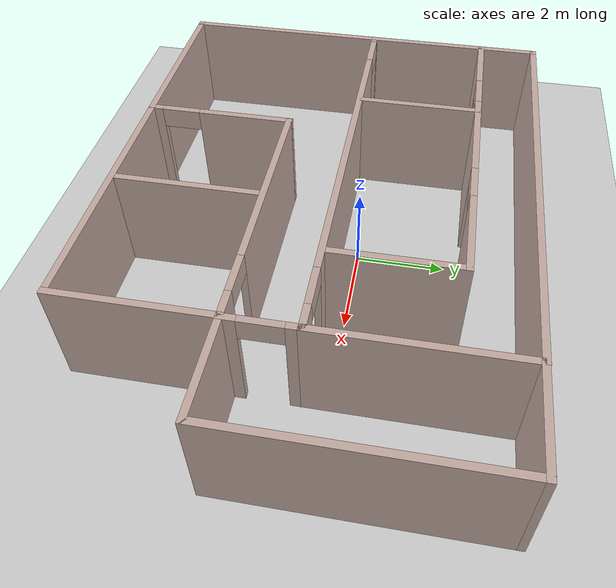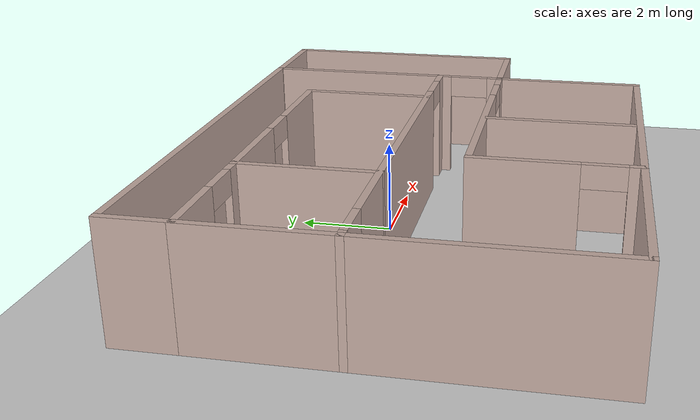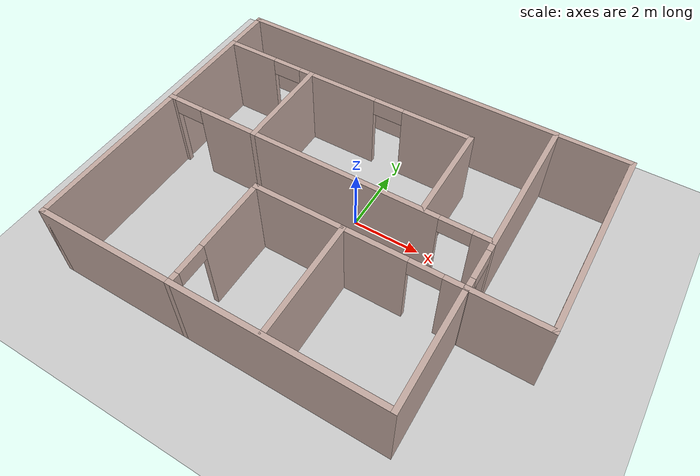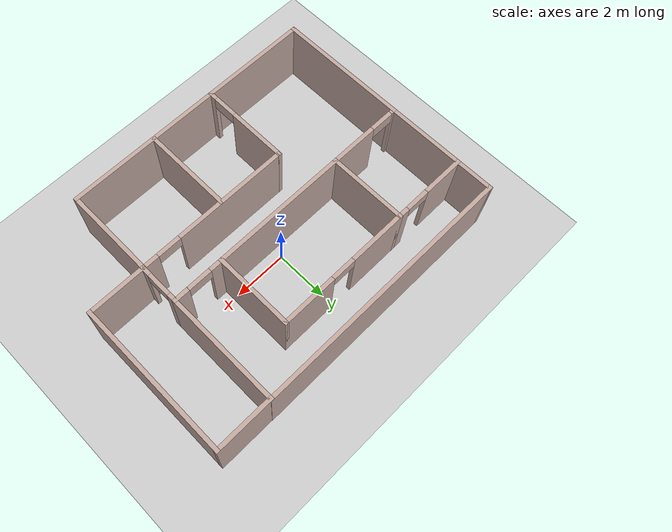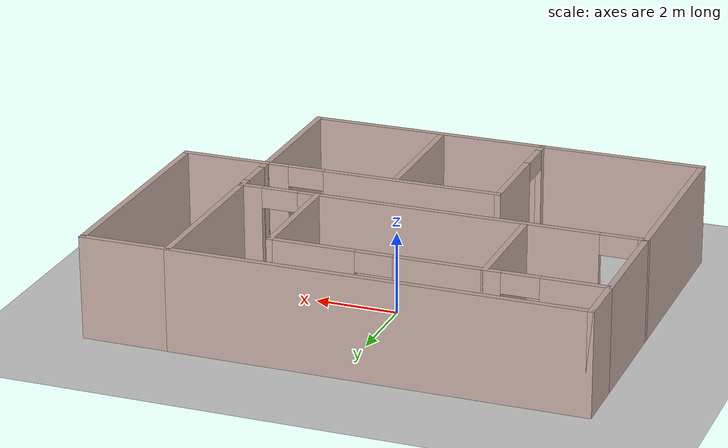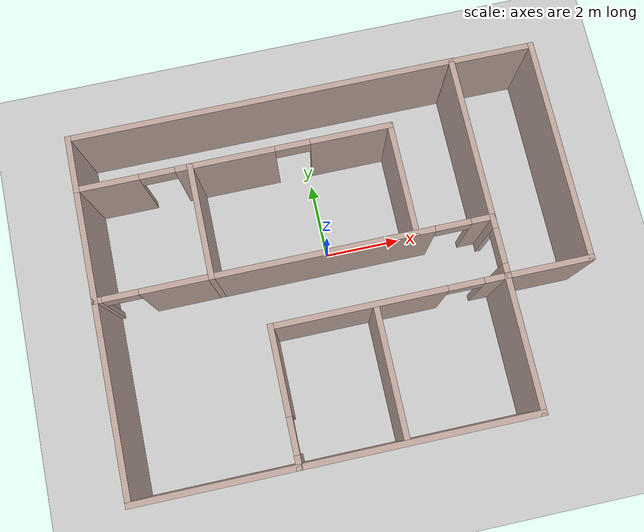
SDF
<sdf version="1.6">
 <world name="default">
  <plugin name="hello" filename="libhello_test.so"/>
  <light name="sun" type="directional">
   <pose>0 0 10 0 -0 0</pose>
   <diffuse>0.8 0.8 0.8 1</diffuse>
   <specular>0.2 0.2 0.2 1</specular>
   <attenuation>
    <range>1000</range>
    <constant>0.9</constant>
    <linear>0.01</linear>
    <quadratic>0.001</quadratic>
   </attenuation>
   <direction>-0.5 0.1 -0.9</direction>
  </light>
  <model name="ground_plane">
   <static>1</static>
   <link name="link">
    <collision name="collision">
     <geometry><plane><normal>0 0 1</normal><size>100 100</size></plane></geometry>
     <surface><friction><ode><mu>100</mu><mu2>50</mu2></ode></friction></surface>
    </collision>
    <visual name="visual">
     <cast_shadows>0</cast_shadows>
     <geometry><plane><normal>0 0 1</normal><size>100 100</size></plane></geometry>
     <material>
      <script><uri>file://media/materials/scripts/gazebo.material</uri><name>Gazebo/Grey</name></script>
     </material>
    </visual>
   </link>
  </model>
  <gravity>0 0 -9.8</gravity>
  <magnetic_field>6e-06 2.3e-05 -4.2e-05</magnetic_field>
  <atmosphere type="adiabatic"/>
  <physics name="default_physics" default="0" type="ode">
   <max_step_size>0.001</max_step_size>
   <real_time_factor>1</real_time_factor>
   <real_time_update_rate>1000</real_time_update_rate>
  </physics>
  <scene><ambient>0.4 0.4 0.4 1</ambient><background>0.7 0.7 0.7 1</background><shadows>1</shadows></scene>
  <spherical_coordinates>
   <surface_model>EARTH_WGS84</surface_model>
   <latitude_deg>0</latitude_deg>
   <longitude_deg>0</longitude_deg>
   <elevation>0</elevation>
   <heading_deg>0</heading_deg>
  </spherical_coordinates>
  <model name="Building1">
   <pose>0.801354 -0.777046 0 0 -0 0</pose>
   <link name="Wall_0">
    <pose>-1.67871 0.325 0 0 -0 3.14159</pose>
    <visual name="Wall_0_Visual_0">
     <pose>-4.70018 0 1.25 0 -0 0</pose>
     <geometry><box><size>0.607207 0.15 2.5</size></box></geometry>
     <material>
      <script><uri>file://media/materials/scripts/gazebo.material</uri><name>Gazebo/Grey</name></script>
      <ambient>0.760784 0.662745 0.627451 1</ambient>
     </material>
     <meta><layer>0</layer></meta>
    </visual>
    <collision name="Wall_0_Collision_0">
     <geometry><box><size>0.607207 0.15 2.5</size></box></geometry>
     <pose>-4.70018 0 1.25 0 -0 0</pose>
    </collision>
    <visual name="Wall_0_Visual_1">
     <pose>0.181804 0 1.25 0 -0 0</pose>
     <geometry><box><size>7.35676 0.15 2.5</size></box></geometry>
     <material>
      <script><uri>file://media/materials/scripts/gazebo.material</uri><name>Gazebo/Grey</name></script>
      <ambient>0.760784 0.662745 0.627451 1</ambient>
     </material>
     <meta><layer>0</layer></meta>
    </visual>
    <collision name="Wall_0_Collision_1">
     <geometry><box><size>7.35676 0.15 2.5</size></box></geometry>
     <pose>0.181804 0 1.25 0 -0 0</pose>
    </collision>
    <visual name="Wall_0_Visual_2">
     <pose>4.88198 0 1.25 0 -0 0</pose>
     <geometry><box><size>0.243598 0.15 2.5</size></box></geometry>
     <material>
      <script><uri>file://media/materials/scripts/gazebo.material</uri><name>Gazebo/Grey</name></script>
      <ambient>0.760784 0.662745 0.627451 1</ambient>
     </material>
     <meta><layer>0</layer></meta>
    </visual>
    <collision name="Wall_0_Collision_2">
     <geometry><box><size>0.243598 0.15 2.5</size></box></geometry>
     <pose>4.88198 0 1.25 0 -0 0</pose>
    </collision>
    <visual name="Wall_0_Visual_3">
     <pose>-3.94657 0 2.25 0 -0 0</pose>
     <geometry><box><size>0.9 0.15 0.5</size></box></geometry>
     <material>
      <script><uri>file://media/materials/scripts/gazebo.material</uri><name>Gazebo/Grey</name></script>
      <ambient>0.760784 0.662745 0.627451 1</ambient>
     </material>
     <meta><layer>0</layer></meta>
    </visual>
    <collision name="Wall_0_Collision_3">
     <geometry><box><size>0.9 0.15 0.5</size></box></geometry>
     <pose>-3.94657 0 2.25 0 -0 0</pose>
    </collision>
    <visual name="Wall_0_Visual_4">
     <pose>4.31018 0 2.25 0 -0 0</pose>
     <geometry><box><size>0.9 0.15 0.5</size></box></geometry>
     <material>
      <script><uri>file://media/materials/scripts/gazebo.material</uri><name>Gazebo/Grey</name></script>
      <ambient>0.760784 0.662745 0.627451 1</ambient>
     </material>
     <meta><layer>0</layer></meta>
    </visual>
    <collision name="Wall_0_Collision_4">
     <geometry><box><size>0.9 0.15 0.5</size></box></geometry>
     <pose>4.31018 0 2.25 0 -0 0</pose>
    </collision>
   </link>
   <link name="Wall_11">
    <collision name="Wall_11_Collision">
     <geometry><box><size>3 0.15 2.5</size></box></geometry>
     <pose>0 0 1.25 0 -0 0</pose>
    </collision>
    <visual name="Wall_11_Visual">
     <pose>0 0 1.25 0 -0 0</pose>
     <geometry><box><size>3 0.15 2.5</size></box></geometry>
     <material>
      <script><uri>file://media/materials/scripts/gazebo.material</uri><name>Gazebo/Grey</name></script>
      <ambient>0.760784 0.662745 0.627451 1</ambient>
     </material>
     <meta><layer>0</layer></meta>
    </visual>
    <pose>-6.60749 1.75 0 0 -0 1.5708</pose>
   </link>
   <link name="Wall_13">
    <pose>-5.18249 3.175 0 0 -0 0</pose>
    <visual name="Wall_13_Visual_0">
     <pose>-0.678273 0 1.25 0 -0 0</pose>
     <geometry><box><size>1.64345 0.15 2.5</size></box></geometry>
     <material>
      <script><uri>file://media/materials/scripts/gazebo.material</uri><name>Gazebo/Grey</name></script>
      <ambient>0.760784 0.662745 0.627451 1</ambient>
     </material>
     <meta><layer>0</layer></meta>
    </visual>
    <collision name="Wall_13_Collision_0">
     <geometry><box><size>1.64345 0.15 2.5</size></box></geometry>
     <pose>-0.678273 0 1.25 0 -0 0</pose>
    </collision>
    <visual name="Wall_13_Visual_1">
     <pose>1.27173 0 1.25 0 -0 0</pose>
     <geometry><box><size>0.456546 0.15 2.5</size></box></geometry>
     <material>
      <script><uri>file://media/materials/scripts/gazebo.material</uri><name>Gazebo/Grey</name></script>
      <ambient>0.760784 0.662745 0.627451 1</ambient>
     </material>
     <meta><layer>0</layer></meta>
    </visual>
    <collision name="Wall_13_Collision_1">
     <geometry><box><size>0.456546 0.15 2.5</size></box></geometry>
     <pose>1.27173 0 1.25 0 -0 0</pose>
    </collision>
    <visual name="Wall_13_Visual_2">
     <pose>0.593454 0 2.25 0 -0 0</pose>
     <geometry><box><size>0.9 0.15 0.5</size></box></geometry>
     <material>
      <script><uri>file://media/materials/scripts/gazebo.material</uri><name>Gazebo/Grey</name></script>
      <ambient>0.760784 0.662745 0.627451 1</ambient>
     </material>
     <meta><layer>0</layer></meta>
    </visual>
    <collision name="Wall_13_Collision_2">
     <geometry><box><size>0.9 0.15 0.5</size></box></geometry>
     <pose>0.593454 0 2.25 0 -0 0</pose>
    </collision>
   </link>
   <link name="Wall_14">
    <collision name="Wall_14_Collision">
     <geometry><box><size>3 0.15 2.5</size></box></geometry>
     <pose>0 0 1.25 0 -0 0</pose>
    </collision>
    <visual name="Wall_14_Visual">
     <pose>0 0 1.25 0 -0 0</pose>
     <geometry><box><size>3 0.15 2.5</size></box></geometry>
     <material>
      <script><uri>file://media/materials/scripts/gazebo.material</uri><name>Gazebo/Grey</name></script>
      <ambient>0.760784 0.662745 0.627451 1</ambient>
     </material>
     <meta><layer>0</layer></meta>
    </visual>
    <pose>-3.75749 1.75 0 0 -0 -1.5708</pose>
   </link>
   <link name="Wall_17">
    <collision name="Wall_17_Collision">
     <geometry><box><size>4.25 0.15 2.5</size></box></geometry>
     <pose>0 0 1.25 0 -0 0</pose>
    </collision>
    <visual name="Wall_17_Visual">
     <pose>0 0 1.25 0 -0 0</pose>
     <geometry><box><size>4.25 0.15 2.5</size></box></geometry>
     <material>
      <script><uri>file://media/materials/scripts/gazebo.material</uri><name>Gazebo/Grey</name></script>
      <ambient>0.760784 0.662745 0.627451 1</ambient>
     </material>
     <meta><layer>0</layer></meta>
    </visual>
    <pose>3.25763 2.375 0 0 -0 1.5708</pose>
   </link>
   <link name="Wall_2">
    <pose>3.25763 -0.426044 0 0 -0 -1.5708</pose>
    <visual name="Wall_2_Visual_0">
     <pose>-0.641987 0 1.25 0 -0 0</pose>
     <geometry><box><size>0.36819 0.15 2.5</size></box></geometry>
     <material>
      <script><uri>file://media/materials/scripts/gazebo.material</uri><name>Gazebo/Grey</name></script>
      <ambient>0.760784 0.662745 0.627451 1</ambient>
     </material>
     <meta><layer>0</layer></meta>
    </visual>
    <collision name="Wall_2_Collision_0">
     <geometry><box><size>0.36819 0.15 2.5</size></box></geometry>
     <pose>-0.641987 0 1.25 0 -0 0</pose>
    </collision>
    <visual name="Wall_2_Visual_1">
     <pose>0.634095 0 1.25 0 -0 0</pose>
     <geometry><box><size>0.383974 0.15 2.5</size></box></geometry>
     <material>
      <script><uri>file://media/materials/scripts/gazebo.material</uri><name>Gazebo/Grey</name></script>
      <ambient>0.760784 0.662745 0.627451 1</ambient>
     </material>
     <meta><layer>0</layer></meta>
    </visual>
    <collision name="Wall_2_Collision_1">
     <geometry><box><size>0.383974 0.15 2.5</size></box></geometry>
     <pose>0.634095 0 1.25 0 -0 0</pose>
    </collision>
    <visual name="Wall_2_Visual_2">
     <pose>-0.007892 0 2.25 0 -0 0</pose>
     <geometry><box><size>0.9 0.15 0.5</size></box></geometry>
     <material>
      <script><uri>file://media/materials/scripts/gazebo.material</uri><name>Gazebo/Grey</name></script>
      <ambient>0.760784 0.662745 0.627451 1</ambient>
     </material>
     <meta><layer>0</layer></meta>
    </visual>
    <collision name="Wall_2_Collision_2">
     <geometry><box><size>0.9 0.15 0.5</size></box></geometry>
     <pose>-0.007892 0 2.25 0 -0 0</pose>
    </collision>
   </link>
   <link name="Wall_21">
    <collision name="Wall_21_Collision">
     <geometry><box><size>6 0.15 2.5</size></box></geometry>
     <pose>0 0 1.25 0 -0 0</pose>
    </collision>
    <visual name="Wall_21_Visual">
     <pose>0 0 1.25 0 -0 0</pose>
     <geometry><box><size>6 0.15 2.5</size></box></geometry>
     <material>
      <script><uri>file://media/materials/scripts/gazebo.material</uri><name>Gazebo/Grey</name></script>
      <ambient>0.760784 0.662745 0.627451 1</ambient>
     </material>
     <meta><layer>0</layer></meta>
    </visual>
    <pose>0.319599 -4.525 0 0 -0 0</pose>
   </link>
   <link name="Wall_22">
    <collision name="Wall_22_Collision">
     <geometry><box><size>3.5 0.15 2.5</size></box></geometry>
     <pose>0 0 1.25 0 -0 0</pose>
    </collision>
    <visual name="Wall_22_Visual">
     <pose>0 0 1.25 0 -0 0</pose>
     <geometry><box><size>3.5 0.15 2.5</size></box></geometry>
     <material>
      <script><uri>file://media/materials/scripts/gazebo.material</uri><name>Gazebo/Grey</name></script>
      <ambient>0.760784 0.662745 0.627451 1</ambient>
     </material>
     <meta><layer>0</layer></meta>
    </visual>
    <pose>3.2446 -2.85 0 0 -0 1.5708</pose>
   </link>
   <link name="Wall_27">
    <collision name="Wall_27_Collision">
     <geometry><box><size>3.45 0.15 2.5</size></box></geometry>
     <pose>0 0 1.25 0 -0 0</pose>
    </collision>
    <visual name="Wall_27_Visual">
     <pose>0 0 1.25 0 -0 0</pose>
     <geometry><box><size>3.45 0.15 2.5</size></box></geometry>
     <material>
      <script><uri>file://media/materials/scripts/gazebo.material</uri><name>Gazebo/Grey</name></script>
      <ambient>0.760784 0.662745 0.627451 1</ambient>
     </material>
     <meta><layer>0</layer></meta>
    </visual>
    <pose>-0.028511 -2.83674 0 0 -0 -1.5708</pose>
   </link>
   <link name="Wall_33">
    <collision name="Wall_33_Collision">
     <geometry><box><size>1.5 0.15 2.5</size></box></geometry>
     <pose>0 0 1.25 0 -0 0</pose>
    </collision>
    <visual name="Wall_33_Visual">
     <pose>0 0 1.25 0 -0 0</pose>
     <geometry><box><size>1.5 0.15 2.5</size></box></geometry>
     <material>
      <script><uri>file://media/materials/scripts/gazebo.material</uri><name>Gazebo/Grey</name></script>
      <ambient>0.760784 0.662745 0.627451 1</ambient>
     </material>
     <meta><layer>0</layer></meta>
    </visual>
    <pose>-6.60749 3.85 0 0 -0 1.5708</pose>
   </link>
   <link name="Wall_34">
    <collision name="Wall_34_Collision">
     <geometry><box><size>10 0.15 2.5</size></box></geometry>
     <pose>0 0 1.25 0 -0 0</pose>
    </collision>
    <visual name="Wall_34_Visual">
     <pose>0 0 1.25 0 -0 0</pose>
     <geometry><box><size>10 0.15 2.5</size></box></geometry>
     <material>
      <script><uri>file://media/materials/scripts/gazebo.material</uri><name>Gazebo/Grey</name></script>
      <ambient>0.760784 0.662745 0.627451 1</ambient>
     </material>
     <meta><layer>0</layer></meta>
    </visual>
    <pose>-1.68249 4.525 0 0 -0 0</pose>
   </link>
   <link name="Wall_36">
    <pose>-1.20749 3.175 0 0 -0 0</pose>
    <visual name="Wall_36_Visual_0">
     <pose>-1.51256 0 1.25 0 -0 0</pose>
     <geometry><box><size>2.22488 0.15 2.5</size></box></geometry>
     <material>
      <script><uri>file://media/materials/scripts/gazebo.material</uri><name>Gazebo/Grey</name></script>
      <ambient>0.760784 0.662745 0.627451 1</ambient>
     </material>
     <meta><layer>0</layer></meta>
    </visual>
    <collision name="Wall_36_Collision_0">
     <geometry><box><size>2.22488 0.15 2.5</size></box></geometry>
     <pose>-1.51256 0 1.25 0 -0 0</pose>
    </collision>
    <visual name="Wall_36_Visual_1">
     <pose>1.56244 0 1.25 0 -0 0</pose>
     <geometry><box><size>2.12512 0.15 2.5</size></box></geometry>
     <material>
      <script><uri>file://media/materials/scripts/gazebo.material</uri><name>Gazebo/Grey</name></script>
      <ambient>0.760784 0.662745 0.627451 1</ambient>
     </material>
     <meta><layer>0</layer></meta>
    </visual>
    <collision name="Wall_36_Collision_1">
     <geometry><box><size>2.12512 0.15 2.5</size></box></geometry>
     <pose>1.56244 0 1.25 0 -0 0</pose>
    </collision>
    <visual name="Wall_36_Visual_2">
     <pose>0.049881 0 2.25 0 -0 0</pose>
     <geometry><box><size>0.9 0.15 0.5</size></box></geometry>
     <material>
      <script><uri>file://media/materials/scripts/gazebo.material</uri><name>Gazebo/Grey</name></script>
      <ambient>0.760784 0.662745 0.627451 1</ambient>
     </material>
     <meta><layer>0</layer></meta>
    </visual>
    <collision name="Wall_36_Collision_2">
     <geometry><box><size>0.9 0.15 0.5</size></box></geometry>
     <pose>0.049881 0 2.25 0 -0 0</pose>
    </collision>
   </link>
   <link name="Wall_37">
    <collision name="Wall_37_Collision">
     <geometry><box><size>3 0.15 2.5</size></box></geometry>
     <pose>0 0 1.25 0 -0 0</pose>
    </collision>
    <visual name="Wall_37_Visual">
     <pose>0 0 1.25 0 -0 0</pose>
     <geometry><box><size>3 0.15 2.5</size></box></geometry>
     <material>
      <script><uri>file://media/materials/scripts/gazebo.material</uri><name>Gazebo/Grey</name></script>
      <ambient>0.760784 0.662745 0.627451 1</ambient>
     </material>
     <meta><layer>0</layer></meta>
    </visual>
    <pose>1.34251 1.75 0 0 -0 -1.5708</pose>
   </link>
   <link name="Wall_39">
    <collision name="Wall_39_Collision">
     <geometry><box><size>2.25 0.15 2.5</size></box></geometry>
     <pose>0 0 1.25 0 -0 0</pose>
    </collision>
    <visual name="Wall_39_Visual">
     <pose>0 0 1.25 0 -0 0</pose>
     <geometry><box><size>2.25 0.15 2.5</size></box></geometry>
     <material>
      <script><uri>file://media/materials/scripts/gazebo.material</uri><name>Gazebo/Grey</name></script>
      <ambient>0.760784 0.662745 0.627451 1</ambient>
     </material>
     <meta><layer>0</layer></meta>
    </visual>
    <pose>4.30028 -1.17727 0 0 -0 -0.000175</pose>
   </link>
   <link name="Wall_40">
    <collision name="Wall_40_Collision">
     <geometry><box><size>5.84195 0.15 2.5</size></box></geometry>
     <pose>0 0 1.25 0 -0 0</pose>
    </collision>
    <visual name="Wall_40_Visual">
     <pose>0 0 1.25 0 -0 0</pose>
     <geometry><box><size>5.84195 0.15 2.5</size></box></geometry>
     <material>
      <script><uri>file://media/materials/scripts/gazebo.material</uri><name>Gazebo/Grey</name></script>
      <ambient>0.760784 0.662745 0.627451 1</ambient>
     </material>
     <meta><layer>0</layer></meta>
    </visual>
    <pose>5.35049 1.66855 0 0 -0 1.5708</pose>
   </link>
   <link name="Wall_41">
    <collision name="Wall_41_Collision">
     <geometry><box><size>2.24393 0.15 2.5</size></box></geometry>
     <pose>0 0 1.25 0 -0 0</pose>
    </collision>
    <visual name="Wall_41_Visual">
     <pose>0 0 1.25 0 -0 0</pose>
     <geometry><box><size>2.24393 0.15 2.5</size></box></geometry>
     <material>
      <script><uri>file://media/materials/scripts/gazebo.material</uri><name>Gazebo/Grey</name></script>
      <ambient>0.760784 0.662745 0.627451 1</ambient>
     </material>
     <meta><layer>0</layer></meta>
    </visual>
    <pose>4.30352 4.51457 0 0 -0 3.14156</pose>
   </link>
   <link name="Wall_5">
    <collision name="Wall_5_Collision">
     <geometry><box><size>5 0.15 2.5</size></box></geometry>
     <pose>0 0 1.25 0 -0 0</pose>
    </collision>
    <visual name="Wall_5_Visual">
     <pose>0 0 1.25 0 -0 0</pose>
     <geometry><box><size>5 0.15 2.5</size></box></geometry>
     <material>
      <script><uri>file://media/materials/scripts/gazebo.material</uri><name>Gazebo/Grey</name></script>
      <ambient>0.760784 0.662745 0.627451 1</ambient>
     </material>
     <meta><layer>0</layer></meta>
    </visual>
    <pose>-6.60749 -2.1 0 0 -0 -1.5708</pose>
   </link>
   <link name="Wall_6">
    <collision name="Wall_6_Collision">
     <geometry><box><size>4.13688 0.15 2.5</size></box></geometry>
     <pose>0 0 1.25 0 -0 0</pose>
    </collision>
    <visual name="Wall_6_Visual">
     <pose>0 0 1.25 0 -0 0</pose>
     <geometry><box><size>4.13688 0.15 2.5</size></box></geometry>
     <material>
      <script><uri>file://media/materials/scripts/gazebo.material</uri><name>Gazebo/Grey</name></script>
      <ambient>0.760784 0.662745 0.627451 1</ambient>
     </material>
     <meta><layer>0</layer></meta>
    </visual>
    <pose>-4.61405 -4.525 0 0 -0 0</pose>
   </link>
   <link name="Wall_7">
    <pose>-2.6054 -2.85 0 0 -0 1.5708</pose>
    <visual name="Wall_7_Visual_0">
     <pose>-1.57223 0 1.25 0 -0 0</pose>
     <geometry><box><size>0.355544 0.15 2.5</size></box></geometry>
     <material>
      <script><uri>file://media/materials/scripts/gazebo.material</uri><name>Gazebo/Grey</name></script>
      <ambient>0.760784 0.662745 0.627451 1</ambient>
     </material>
     <meta><layer>0</layer></meta>
    </visual>
    <collision name="Wall_7_Collision_0">
     <geometry><box><size>0.355544 0.15 2.5</size></box></geometry>
     <pose>-1.57223 0 1.25 0 -0 0</pose>
    </collision>
    <visual name="Wall_7_Visual_1">
     <pose>0.627772 0 1.25 0 -0 0</pose>
     <geometry><box><size>2.24446 0.15 2.5</size></box></geometry>
     <material>
      <script><uri>file://media/materials/scripts/gazebo.material</uri><name>Gazebo/Grey</name></script>
      <ambient>0.760784 0.662745 0.627451 1</ambient>
     </material>
     <meta><layer>0</layer></meta>
    </visual>
    <collision name="Wall_7_Collision_1">
     <geometry><box><size>2.24446 0.15 2.5</size></box></geometry>
     <pose>0.627772 0 1.25 0 -0 0</pose>
    </collision>
    <visual name="Wall_7_Visual_2">
     <pose>-0.944456 0 2.25 0 -0 0</pose>
     <geometry><box><size>0.9 0.15 0.5</size></box></geometry>
     <material>
      <script><uri>file://media/materials/scripts/gazebo.material</uri><name>Gazebo/Grey</name></script>
      <ambient>0.760784 0.662745 0.627451 1</ambient>
     </material>
     <meta><layer>0</layer></meta>
    </visual>
    <collision name="Wall_7_Collision_2">
     <geometry><box><size>0.9 0.15 0.5</size></box></geometry>
     <pose>-0.944456 0 2.25 0 -0 0</pose>
    </collision>
   </link>
   <link name="Wall_9">
    <pose>0.328897 -1.17709 0 0 -0 3.14159</pose>
    <visual name="Wall_9_Visual_0">
     <pose>-2.66597 0 1.25 0 -0 0</pose>
     <geometry><box><size>0.660407 0.15 2.5</size></box></geometry>
     <material>
      <script><uri>file://media/materials/scripts/gazebo.material</uri><name>Gazebo/Grey</name></script>
      <ambient>0.760784 0.662745 0.627451 1</ambient>
     </material>
     <meta><layer>0</layer></meta>
    </visual>
    <collision name="Wall_9_Collision_0">
     <geometry><box><size>0.660407 0.15 2.5</size></box></geometry>
     <pose>-2.66597 0 1.25 0 -0 0</pose>
    </collision>
    <visual name="Wall_9_Visual_1">
     <pose>0.780204 0 1.25 0 -0 0</pose>
     <geometry><box><size>4.43194 0.15 2.5</size></box></geometry>
     <material>
      <script><uri>file://media/materials/scripts/gazebo.material</uri><name>Gazebo/Grey</name></script>
      <ambient>0.760784 0.662745 0.627451 1</ambient>
     </material>
     <meta><layer>0</layer></meta>
    </visual>
    <collision name="Wall_9_Collision_1">
     <geometry><box><size>4.43194 0.15 2.5</size></box></geometry>
     <pose>0.780204 0 1.25 0 -0 0</pose>
    </collision>
    <visual name="Wall_9_Visual_2">
     <pose>-1.88577 0 2.25 0 -0 0</pose>
     <geometry><box><size>0.9 0.15 0.5</size></box></geometry>
     <material>
      <script><uri>file://media/materials/scripts/gazebo.material</uri><name>Gazebo/Grey</name></script>
      <ambient>0.760784 0.662745 0.627451 1</ambient>
     </material>
     <meta><layer>0</layer></meta>
    </visual>
    <collision name="Wall_9_Collision_2">
     <geometry><box><size>0.9 0.15 0.5</size></box></geometry>
     <pose>-1.88577 0 2.25 0 -0 0</pose>
    </collision>
   </link>
   <static>1</static>
  </model>
  <light name="user_point_light_0" type="point">
   <pose>0.420461 -0.96507 1 0 -0 0</pose>
   <diffuse>0.5 0.5 0.5 1</diffuse>
   <specular>0.1 0.1 0.1 1</specular>
   <attenuation>
    <range>20</range>
    <constant>0.5</constant>
    <linear>0.01</linear>
    <quadratic>0.001</quadratic>
   </attenuation>
   <cast_shadows>0</cast_shadows>
   <direction>0 0 -1</direction>
  </light>
 </world>
</sdf>
